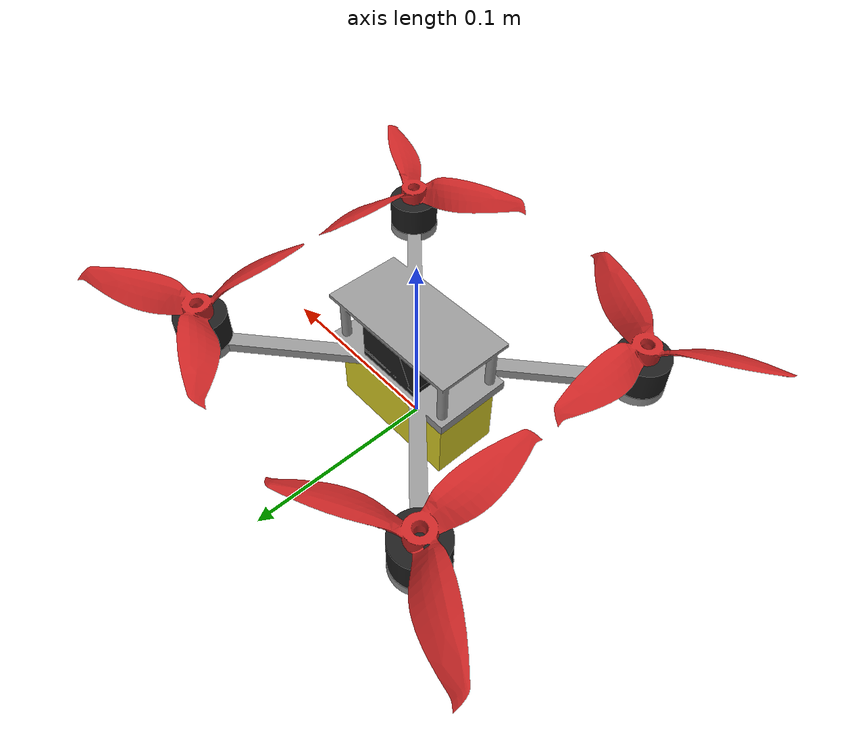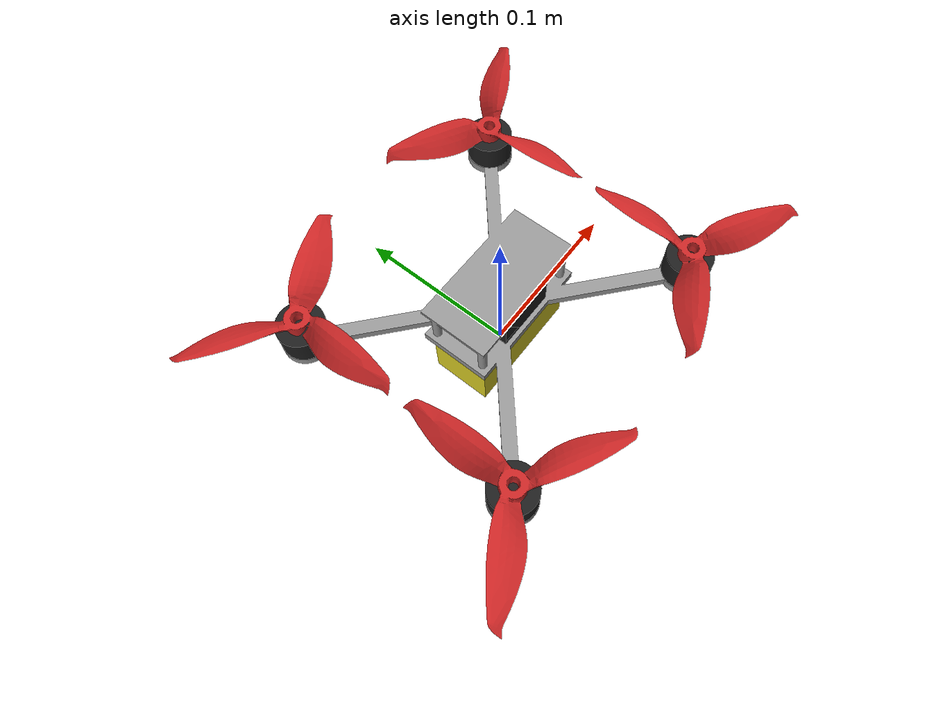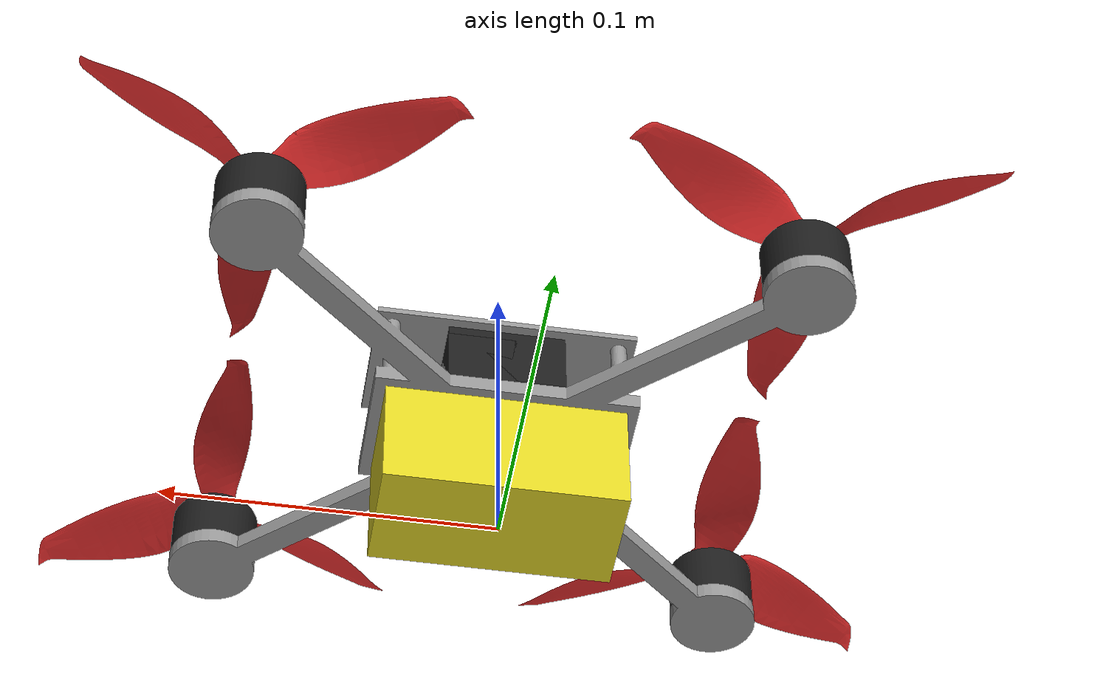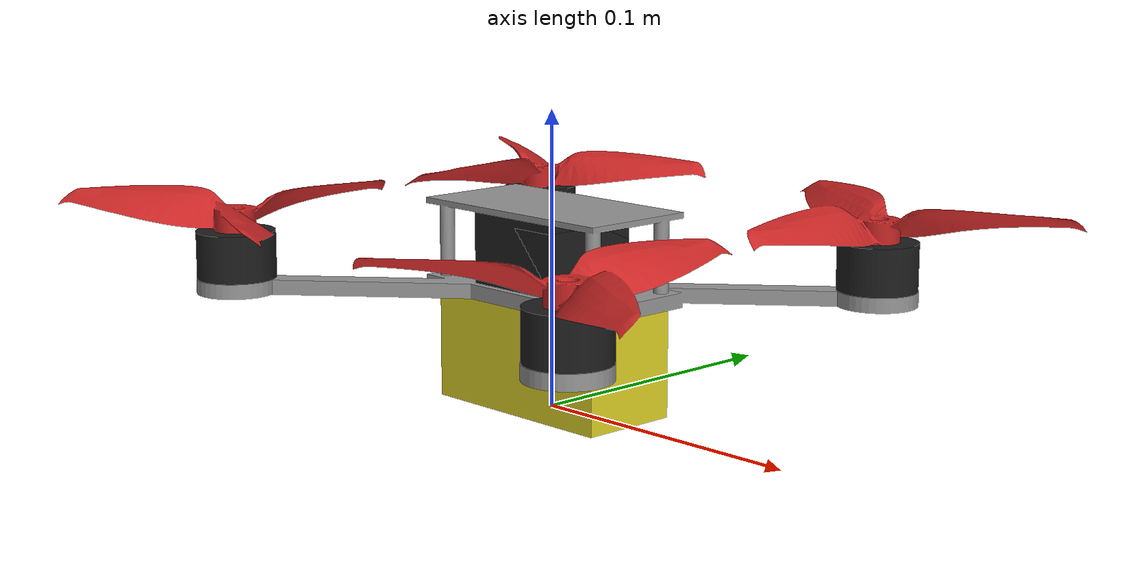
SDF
<?xml version='1.0'?>
<sdf version='1.6'>

  <model name='nf1'>
    <!-- a plugin with this filename is required -->
    <plugin name="config" filename="libAircraftConfigPlugin.so">
        <motorCount>4</motorCount>
        <!-- Where is the center of thrust in relation to this specified link -->
        <centerOfThrust>
            <link>battery</link>
            <offset>0 0 0.058</offset>
        </centerOfThrust>
      <sensors>
          <sensor type="imu">
              <enable_angular_velocity>true</enable_angular_velocity>
              <enable_linear_acceleration>true</enable_linear_acceleration>
              <enable_orientation>true</enable_orientation>
          </sensor>
          <sensor type="esc">
                <enable_angular_velocity>true</enable_angular_velocity>
                <enable_temperature>false</enable_temperature>
                <enable_current>false</enable_current>
          </sensor>
          <sensor type="distance">
                <enable_ground_distance>true</enable_ground_distance>

          </sensor>

      </sensors>
    </plugin>

    <enable_wind>true</enable_wind>
    <pose>0 0 0 0 0 0</pose>

    <link name='frame'>
        <pose>0 0 0.037 0 0 1.5708</pose>
        <inertial>
            <pose>0.000000 0.000000 0.007083</pose>
            <mass>0.066</mass>
            <inertia>
              <ixx>0.0001678344831307261</ixx>
              <ixy>0</ixy>
              <ixz>0</ixz>
              <iyy>0.00011834309223915557</iyy>
              <iyz>0</iyz>
              <izz>0.0002725710742660843</izz>
            </inertia>
        </inertial>
        <visual name='frame_visual'>
            <geometry>
              <mesh>
                <scale>0.001 0.001 0.001</scale>
                <uri>model://nf1/meshes/frame_floss2.dae</uri>
              </mesh>
            </geometry>
            <material>
              <script>
                <name>Gazebo/Grey</name>
              </script>
            </material>
        </visual>
        <gravity>1</gravity>
      <velocity_decay/>
      <self_collide>0</self_collide>
    </link>

    <link name='battery'>
        <pose>0 0 0 0 0 1.5708</pose>
      <inertial>
        <pose>0.000000 0.000000 0.018500</pose>
        <mass>0.194</mass>
        <inertia>
          <ixx>0.00010828433774545583</ixx>
          <ixy>0</ixy>
          <ixz>0</ixz>
          <iyy>4.193633637735583e-05</iyy>
          <iyz>0</iyz>
          <izz>0.00010595633504345831</izz>
		</inertia>
      </inertial>
      <visual name='battery_visual'>
        <pose>0 0 0 0 -0 0</pose>
        <geometry>
          <mesh>
            <scale>0.001 0.001 0.001</scale>
            <uri>model://nf1/meshes/battery_tattu_rline_1550mah.dae</uri>
          </mesh>
        </geometry>
        <material>
          <script>
            <name>Gazebo/Yellow</name>
            <uri>__default__</uri>
          </script>
        </material>
      </visual>
      <gravity>1</gravity>
      <velocity_decay/>
      <self_collide>0</self_collide>
    </link>
    <joint name="battery_joint" type="fixed">
        <child>battery</child>
        <parent>frame</parent>
    </joint>

    <link name="motor_1">

        <pose>-0.0805 -0.07 0.042 0 -0 0</pose>
      <inertial>
        <pose>0.000000 -0.000000 0.008000</pose>
        <mass>0.02</mass>
        <inertia>
          <ixx>1.3131086850610764e-06</ixx>
          <ixy>0</ixy>
          <ixz>0</ixz>
          <iyy>1.3131086827940408e-06</iyy>
          <iyz>0</iyz>
          <izz>1.7728840665083659e-06</izz>
        </inertia>
      </inertial>
      <visual name="motor_1_visual">
        <pose>0 0 0 0 -0 0</pose>
        <geometry>
          <mesh>
            <scale>0.001 0.001 0.001</scale>
            <uri>model://nf1/meshes/motor_hyperlite_2204_2522.dae</uri>
          </mesh>
        </geometry>
        <material>
          <script>
            <name>Gazebo/Black</name>
            <uri>__default__</uri>
          </script>
        </material>
      </visual>
      <gravity>1</gravity>
      <velocity_decay/>
      <self_collide>0</self_collide>
    </link>

    <joint name="motor_1_joint" type="fixed">

        <pose>0 0 0 0 -0 0</pose>
        <child>motor_1</child>
        <parent>frame</parent>
    </joint>

    <link name="motor_2">
        <pose>0.0805 -0.07 0.042 0 -0 0</pose>
      <inertial>
        <pose>0.000000 -0.000000 0.008000</pose>
        <mass>0.02</mass>
        <inertia>
          <ixx>1.3131086850610764e-06</ixx>
          <ixy>0</ixy>
          <ixz>0</ixz>
          <iyy>1.3131086827940408e-06</iyy>
          <iyz>0</iyz>
          <izz>1.7728840665083659e-06</izz>
        </inertia>
      </inertial>
      <visual name="motor_2_visual">
        <pose>0 0 0 0 -0 0</pose>
        <geometry>
          <mesh>
            <scale>0.001 0.001 0.001</scale>
            <uri>model://nf1/meshes/motor_hyperlite_2204_2522.dae</uri>
          </mesh>
        </geometry>
        <material>
          <script>
            <name>Gazebo/Black</name>
            <uri>__default__</uri>
          </script>
        </material>
      </visual>
      <gravity>1</gravity>
      <velocity_decay/>
      <self_collide>0</self_collide>
    </link>

    <joint name="motor_2_joint" type="fixed">

        <pose>0 0 0 0 -0 0</pose>
        <child>motor_2</child>
        <parent>frame</parent>
    </joint>

    <link name="motor_3">
        <pose>-0.0805 0.07 0.042 0 -0 0</pose>
      <inertial>
        <pose>0.000000 -0.000000 0.008000</pose>
        <mass>0.02</mass>
        <inertia>
          <ixx>1.3131086850610764e-06</ixx>
          <ixy>0</ixy>
          <ixz>0</ixz>
          <iyy>1.3131086827940408e-06</iyy>
          <iyz>0</iyz>
          <izz>1.7728840665083659e-06</izz>
        </inertia>
      </inertial>
      <visual name="motor_3_visual">
        <pose>0 0 0 0 -0 0</pose>
        <geometry>
          <mesh>
            <scale>0.001 0.001 0.001</scale>
            <uri>model://nf1/meshes/motor_hyperlite_2204_2522.dae</uri>
          </mesh>
        </geometry>
        <material>
          <script>
            <name>Gazebo/Black</name>
            <uri>__default__</uri>
          </script>
        </material>
      </visual>
      <gravity>1</gravity>
      <velocity_decay/>
      <self_collide>0</self_collide>
    </link>
    <joint name="motor_3_joint" type="fixed">
        <pose>0 0 0 0 -0 0</pose>
        <child>motor_3</child>
        <parent>frame</parent>
    </joint>

    <link name="motor_4">
        <pose>0.0805 0.07  0.042 0 -0 0</pose>
      <inertial>
        <pose>0.000000 -0.000000 0.008000</pose>
        <mass>0.02</mass>
        <inertia>
          <ixx>1.3131086850610764e-06</ixx>
          <ixy>0</ixy>
          <ixz>0</ixz>
          <iyy>1.3131086827940408e-06</iyy>
          <iyz>0</iyz>
          <izz>1.7728840665083659e-06</izz>
        </inertia>
      </inertial>
      <visual name="motor_4_visual">
        <pose>0 0 0 0 -0 0</pose>
        <geometry>
          <mesh>
            <scale>0.001 0.001 0.001</scale>
            <uri>model://nf1/meshes/motor_hyperlite_2204_2522.dae</uri>
          </mesh>
        </geometry>
        <material>
          <script>
            <name>Gazebo/Black</name>
            <uri>__default__</uri>
          </script>
        </material>
      </visual>
      <gravity>1</gravity>
      <velocity_decay/>
      <self_collide>0</self_collide>
    </link>
    <joint name="motor_4_joint" type="fixed">

        <pose>0 0 0 0 -0 0</pose>
        <child>motor_4</child>
        <parent>frame</parent>
    </joint>

    <link name="prop_1">
    <pose>-0.0805 -0.07  0.058 0 -0 0</pose>
      <inertial>
        <pose>-0.000004 0.000009 0.002041</pose>
        <mass>0.00511</mass>
        <inertia>
          <ixx>2.157959928944065e-06</ixx>
          <ixy>0</ixy>
          <ixz>0</ixz>
          <iyy>2.1559551412902913e-06</iyy>
          <iyz>0</iyz>
          <izz>4.242412526026635e-06</izz>
        </inertia>
      </inertial>
      <visual name="prop_1_visual">
        <pose>0 0 0 1.5708 -0 3.1415</pose>
        <geometry>
          <mesh>
            <scale>0.001 0.001 0.001</scale>
            <uri>model://nf1/meshes/prop_gemfan_5152R_cw.dae</uri>
          </mesh>
        </geometry>
        <material>
          <script>
            <name>Gazebo/Red</name>
            <uri>__default__</uri>
          </script>
        </material>
      </visual>
      <gravity>1</gravity>
      <velocity_decay/>
      <self_collide>0</self_collide>
    </link>
    <joint name="prop_1_joint" type='revolute'>
      <child>prop_1</child>

      <parent>frame</parent>
      <axis>
        <xyz>0 0 1</xyz>
        <limit>
          <lower>-1e+16</lower>
          <upper>1e+16</upper>
        </limit>
        <dynamics>
          <spring_reference>0</spring_reference>
          <spring_stiffness>0</spring_stiffness>
        </dynamics>
        <use_parent_model_frame>1</use_parent_model_frame>
      </axis>
    </joint>
    <plugin name="prop_1_motor_model" filename='libgazebo_motor_model.so'>
      <robotNamespace></robotNamespace>
      <jointName>prop_1_joint</jointName>
      <linkName>prop_1</linkName>
      <turningDirection>cw</turningDirection>
      <timeConstantUp>0.187</timeConstantUp>
      <timeConstantDown>0.1</timeConstantDown>
      <maxRotVelocity>2622</maxRotVelocity>
      <motorConstant>9.375e-7</motorConstant>
      <momentConstant>0.0086</momentConstant>
      <motorNumber>0</motorNumber>
      <rotorDragCoefficient>8e-5</rotorDragCoefficient>
      <rollingMomentCoefficient>1e-06</rollingMomentCoefficient>
      <rotorVelocitySlowdownSim>1</rotorVelocitySlowdownSim>
      <rotorVelocityUnits>rpm</rotorVelocityUnits>
      <escTransferFunction>
          <term1Coefficient>-14229.32</term1Coefficient>
          <term2Coefficient>39125.59</term2Coefficient>
          <term3Coefficient>86.67</term3Coefficient>
      </escTransferFunction>
      <joint_control_pid>
          <p>0.0001</p>
          <i>0</i>
          <d>0</d>
          <iMin>0</iMin>
          <iMax>0</iMax>
          <cmdMin>-0.05</cmdMin>
          <cmdMax>0.1</cmdMax>
      </joint_control_pid>
    </plugin>

    <link name="prop_2">
    <pose>0.0805 -0.07 0.058 0 -0 0</pose>
      <inertial>
        <pose>-0.000004 0.000009 0.002041</pose>
        <mass>0.00511</mass>
        <inertia>
          <ixx>2.157959928944065e-06</ixx>
          <ixy>0</ixy>
          <ixz>0</ixz>
          <iyy>2.1559551412902913e-06</iyy>
          <iyz>0</iyz>
          <izz>4.242412526026635e-06</izz>
        </inertia>
      </inertial>
      <visual name="prop_2_visual">
        <pose>0 0 0 1.57080 -0 3.1415</pose>
        <geometry>
          <mesh>
            <scale>0.001 0.001 0.001</scale>
            <uri>model://nf1/meshes/prop_gemfan_5152R_ccw.dae</uri>
          </mesh>
        </geometry>
        <material>
          <script>
            <name>Gazebo/Red</name>
            <uri>__default__</uri>
          </script>
        </material>
      </visual>
      <gravity>1</gravity>
      <velocity_decay/>
      <self_collide>0</self_collide>
    </link>
    <joint name="prop_2_joint" type='revolute'>
      <child>prop_2</child>

      <parent>frame</parent>
      <axis>
        <xyz>0 0 1</xyz>
        <limit>
          <lower>-1e+16</lower>
          <upper>1e+16</upper>
        </limit>
        <dynamics>
          <spring_reference>0</spring_reference>
          <spring_stiffness>0</spring_stiffness>
        </dynamics>
        <use_parent_model_frame>1</use_parent_model_frame>
      </axis>
    </joint>
    <plugin name="prop_2_motor_model" filename='libgazebo_motor_model.so'>
      <robotNamespace></robotNamespace>
      <jointName>prop_2_joint</jointName>
      <linkName>prop_2</linkName>
      <turningDirection>ccw</turningDirection>
      <timeConstantUp>0.187</timeConstantUp>
      <timeConstantDown>0.1</timeConstantDown>
      <maxRotVelocity>2622</maxRotVelocity>
      <motorConstant>9.375e-7</motorConstant>
      <momentConstant>0.0086</momentConstant>
      <motorNumber>1</motorNumber>
      <rotorDragCoefficient>8e-5</rotorDragCoefficient>
      <rollingMomentCoefficient>1e-06</rollingMomentCoefficient>
      <rotorVelocitySlowdownSim>1</rotorVelocitySlowdownSim>
      <rotorVelocityUnits>rpm</rotorVelocityUnits>
      <escTransferFunction>
          <term1Coefficient>-14229.32</term1Coefficient>
          <term2Coefficient>39125.59</term2Coefficient>
          <term3Coefficient>86.67</term3Coefficient>
      </escTransferFunction>
      <joint_control_pid>
          <p>0.0001</p>
          <i>0</i>
          <d>0</d>
          <iMin>0</iMin>
          <iMax>0</iMax>
          <cmdMin>-0.1</cmdMin>
          <cmdMax>0.05</cmdMax>
      </joint_control_pid>
    </plugin>

    <link name="prop_3">
    <pose>-0.0805 0.07  0.058 0 -0 0</pose>
      <inertial>
        <pose>-0.000004 0.000009 0.002041</pose>
        <mass>0.00511</mass>
        <inertia>
          <ixx>2.157959928944065e-06</ixx>
          <ixy>0</ixy>
          <ixz>0</ixz>
          <iyy>2.1559551412902913e-06</iyy>
          <iyz>0</iyz>
          <izz>4.242412526026635e-06</izz>
        </inertia>
      </inertial>
      <visual name="prop_3_visual">
        <pose>0 0 0 1.57080 -0 0</pose>
        <geometry>
          <mesh>
            <scale>0.001 0.001 0.001</scale>
            <uri>model://nf1/meshes/prop_gemfan_5152R_ccw.dae</uri>
          </mesh>
        </geometry>
        <material>
          <script>
            <name>Gazebo/Red</name>
            <uri>__default__</uri>
          </script>
        </material>
      </visual>
      <gravity>1</gravity>
      <velocity_decay/>
      <self_collide>0</self_collide>
    </link>
    <joint name="prop_3_joint" type='revolute'>
      <child>prop_3</child>

      <parent>frame</parent>
      <axis>
        <xyz>0 0 1</xyz>
        <limit>
          <lower>-1e+16</lower>
          <upper>1e+16</upper>
        </limit>
        <dynamics>
          <spring_reference>0</spring_reference>
          <spring_stiffness>0</spring_stiffness>
        </dynamics>
        <use_parent_model_frame>1</use_parent_model_frame>
      </axis>
    </joint>
    <plugin name="prop_3_motor_model" filename='libgazebo_motor_model.so'>
      <robotNamespace></robotNamespace>
      <jointName>prop_3_joint</jointName>
      <linkName>prop_3</linkName>
      <turningDirection>ccw</turningDirection>
      <timeConstantUp>0.187</timeConstantUp>
      <timeConstantDown>0.1</timeConstantDown>
      <maxRotVelocity>2622</maxRotVelocity>
      <motorConstant>9.375e-7</motorConstant>
      <momentConstant>0.0086</momentConstant>
      <motorNumber>2</motorNumber>
      <rotorDragCoefficient>8e-5</rotorDragCoefficient>
      <rollingMomentCoefficient>1e-06</rollingMomentCoefficient>
      <rotorVelocitySlowdownSim>1</rotorVelocitySlowdownSim>
      <rotorVelocityUnits>rpm</rotorVelocityUnits>
      <escTransferFunction>
          <term1Coefficient>-14229.32</term1Coefficient>
          <term2Coefficient>39125.59</term2Coefficient>
          <term3Coefficient>86.67</term3Coefficient>
      </escTransferFunction>
      <joint_control_pid>
          <p>0.0001</p>
          <i>0</i>
          <d>0</d>
          <iMin>0</iMin>
          <iMax>0</iMax>
          <cmdMin>-0.1</cmdMin>
          <cmdMax>0.05</cmdMax>
      </joint_control_pid>
    </plugin>

    <link name="prop_4">
    <pose>0.0805 0.07 0.058 0 -0 0</pose>
      <inertial>
        <pose>-0.000004 0.000009 0.002041</pose>
        <mass>0.00511</mass>
        <inertia>
          <ixx>2.157959928944065e-06</ixx>
          <ixy>0</ixy>
          <ixz>0</ixz>
          <iyy>2.1559551412902913e-06</iyy>
          <iyz>0</iyz>
          <izz>4.242412526026635e-06</izz>
        </inertia>
      </inertial>
      <visual name="prop_4_visual">
        <pose>0 0 0 1.57080 -0 0</pose>
        <geometry>
          <mesh>
            <scale>0.001 0.001 0.001</scale>
            <uri>model://nf1/meshes/prop_gemfan_5152R_cw.dae</uri>
          </mesh>
        </geometry>
        <material>
          <script>
            <name>Gazebo/Red</name>
            <uri>__default__</uri>
          </script>
        </material>
      </visual>
      <gravity>1</gravity>
      <velocity_decay/>
      <self_collide>0</self_collide>
    </link>
    <joint name="prop_4_joint" type='revolute'>
      <child>prop_4</child>

      <parent>frame</parent>
      <axis>
        <xyz>0 0 1</xyz>
        <limit>
          <lower>-1e+16</lower>
          <upper>1e+16</upper>
        </limit>
        <dynamics>
          <spring_reference>0</spring_reference>
          <spring_stiffness>0</spring_stiffness>
        </dynamics>
        <use_parent_model_frame>1</use_parent_model_frame>
      </axis>
    </joint>
    <plugin name="prop_4_motor_model" filename='libgazebo_motor_model.so'>
      <robotNamespace></robotNamespace>
      <jointName>prop_4_joint</jointName>
      <linkName>prop_4</linkName>
      <turningDirection>cw</turningDirection>
      <timeConstantUp>0.187</timeConstantUp>
      <timeConstantDown>0.1</timeConstantDown>
      <maxRotVelocity>2622</maxRotVelocity>
      <motorConstant>9.375e-7</motorConstant>
      <momentConstant>0.0086</momentConstant>
      <motorNumber>3</motorNumber>
      <rotorDragCoefficient>8e-5</rotorDragCoefficient>
      <rollingMomentCoefficient>1e-06</rollingMomentCoefficient>
      <rotorVelocitySlowdownSim>1</rotorVelocitySlowdownSim>
      <rotorVelocityUnits>rpm</rotorVelocityUnits>
      <escTransferFunction>
          <term1Coefficient>-14229.32</term1Coefficient>
          <term2Coefficient>39125.59</term2Coefficient>
          <term3Coefficient>86.67</term3Coefficient>
      </escTransferFunction>
      <joint_control_pid>
          <p>0.0001</p>
          <i>0</i>
          <d>0</d>
          <iMin>0</iMin>
          <iMax>0</iMax>
          <cmdMin>-0.05</cmdMin>
          <cmdMax>0.1</cmdMax>
      </joint_control_pid>
    </plugin>

    <link name='fc_stack'>
        <pose>0 0 0.042 0 -0 0</pose>
      <inertial>
          <pose>0.000000 0.000000 0.010500</pose>
          <mass>0.0305</mass>
        <inertia>
          <ixx>4.414875e-06</ixx>
          <ixy>0</ixy>
          <ixz>0</ixz>
          <iyy>4.414875e-06</iyy>
          <iyz>0</iyz>
          <izz>6.5879999999999994e-06</izz>
        </inertia>
      </inertial>
      <visual name='fc_stack_visual'>
        <pose>0 0 0 0 -0 0</pose>
        <geometry>
          <mesh>
            <scale>0.001 0.001 0.001</scale>
            <uri>model://nf1/meshes/fc_stack_simple.dae</uri>
          </mesh>
        </geometry>
        <material>
          <script>
            <name>Gazebo/Black</name>
            <uri>__default__</uri>
          </script>
        </material>
      </visual>
      <gravity>1</gravity>
      <velocity_decay/>
      <self_collide>0</self_collide>
    </link>
    <joint name="fc_stack_joint" type="fixed">
        <child>fc_stack</child>
        <parent>frame</parent>
    </joint>
    <plugin name='gazebo_imu_plugin' filename='libgazebo_imu_plugin.so'>
      <robotNamespace></robotNamespace>
      <linkName>fc_stack</linkName>
      <imuTopic>/imu</imuTopic>
      <gyroscopeNoiseDensity>0.0003394</gyroscopeNoiseDensity>
      <gyroscopeRandomWalk>3.8785e-05</gyroscopeRandomWalk>
      <gyroscopeBiasCorrelationTime>1000.0</gyroscopeBiasCorrelationTime>
      <gyroscopeTurnOnBiasSigma>0.0087</gyroscopeTurnOnBiasSigma>
      <accelerometerNoiseDensity>0.004</accelerometerNoiseDensity>
      <accelerometerRandomWalk>0.006</accelerometerRandomWalk>
      <accelerometerBiasCorrelationTime>300.0</accelerometerBiasCorrelationTime>
      <accelerometerTurnOnBiasSigma>0.196</accelerometerTurnOnBiasSigma>
      <angularVelocityUnits>deg/s</angularVelocityUnits>
    </plugin>

    <link name='fc_stack_1'>
        <pose>0 0 0.045 0 -0 0</pose>
      <inertial>
          <pose>0.000000 0.000000 0.010500</pose>
          <mass>0.0305</mass>
        <inertia>
          <ixx>4.414875e-06</ixx>
          <ixy>0</ixy>
          <ixz>0</ixz>
          <iyy>4.414875e-06</iyy>
          <iyz>0</iyz>
          <izz>6.5879999999999994e-06</izz>
        </inertia>
      </inertial>
      <visual name='fc_stack_1_visual'>
        <pose>0 0 0 0 -0 0</pose>
        <geometry>
          <mesh>
            <scale>0.001 0.001 0.001</scale>
            <uri>model://nf1/meshes/fc_stack_simple.dae</uri>
          </mesh>
        </geometry>
        <material>
          <script>
            <name>Gazebo/Black</name>
            <uri>__default__</uri>
          </script>
        </material>
      </visual>
      <gravity>1</gravity>
      <velocity_decay/>
      <self_collide>0</self_collide>
    </link>
    <joint name="fc_stack_1_joint" type="fixed">
        <child>fc_stack_1</child>
        <parent>frame</parent>
    </joint>
    <plugin name='gazebo_distance_plugin' filename='libgazebo_distance_plugin.so'>
      <robotNamespace></robotNamespace>
      <linkName>fc_stack_1</linkName>
      <distanceTopic>/Distance</distanceTopic>
      <MaxRange>20</MaxRange>
    </plugin>
    <static>0</static>
  </model>
</sdf>
